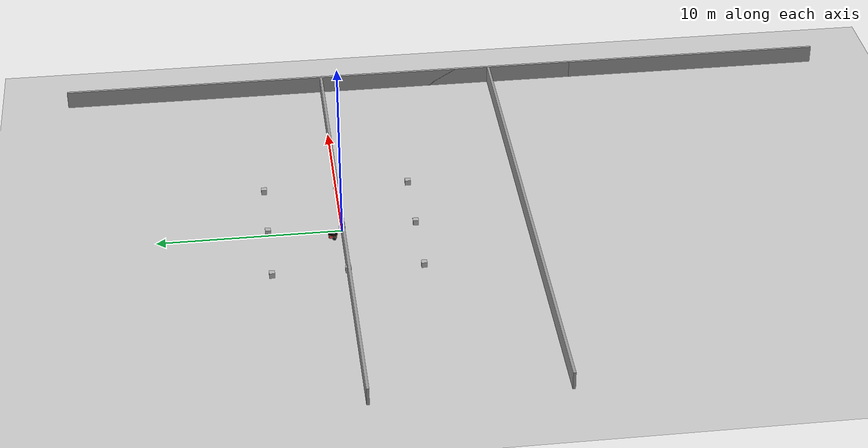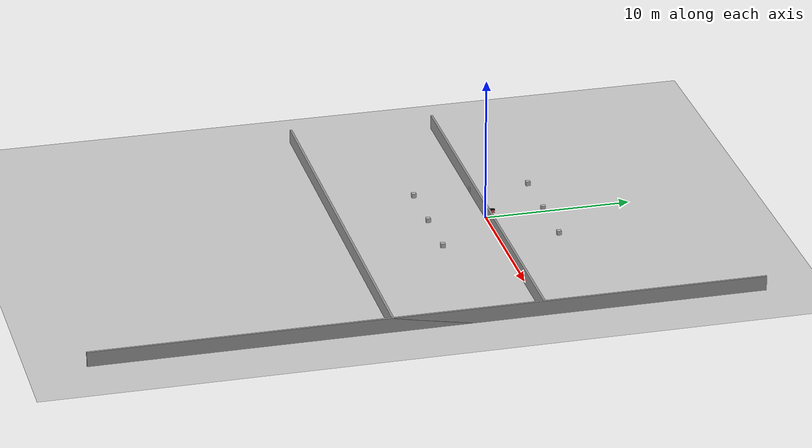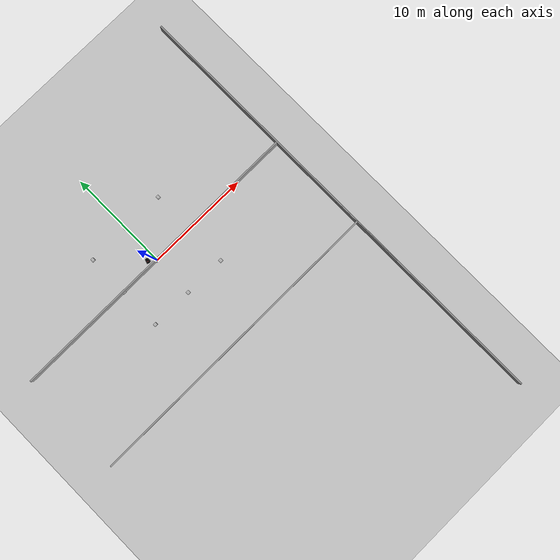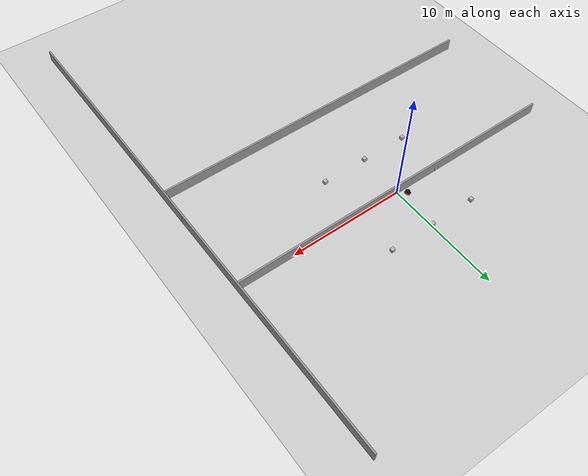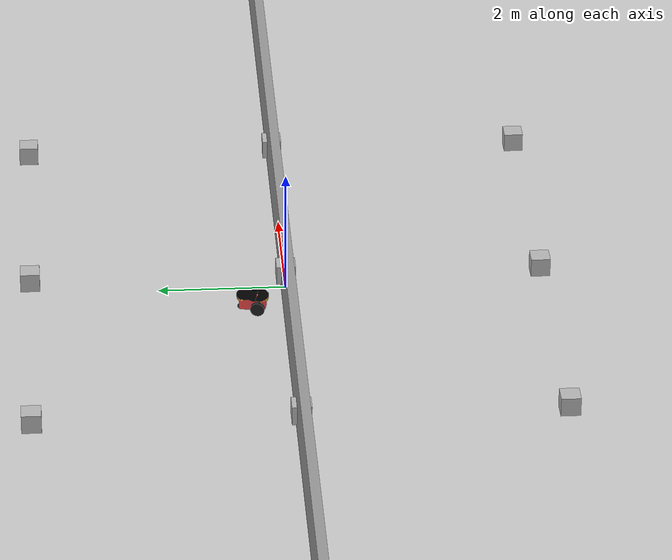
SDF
<?xml version="1.0" ?>
<sdf version="1.6">
<world name="default">
<include>
<uri>model://sun</uri>
</include>
<include>
<uri>model://ground_plane</uri>
</include>

<model name="EmptyRoom">
<include>
<uri>model://empty_room</uri>
</include>
</model>

<model name="DynamicObstacle1">
<pose>-4 4 0.15 0 0 0</pose>
<include>
<uri>model://dynamic_obstacle</uri>
</include>
</model>

<model name="DynamicObstacle2">
<pose>-4 0 0.15 0 0 0</pose>
<include>
<uri>model://dynamic_obstacle</uri>
</include>
</model>

<model name="DynamicObstacle3">
<pose>-4 -4 0.15 0 0 0</pose>
<include>
<uri>model://dynamic_obstacle</uri>
</include>
</model>

<model name="DynamicObstacle4">
<pose>0 4 0.15 0 0 0</pose>
<include>
<uri>model://dynamic_obstacle</uri>
</include>
</model>

<model name="DynamicObstacle5">
<pose>0 0 0.15 0 0 0</pose>
<include>
<uri>model://dynamic_obstacle</uri>
</include>
</model>

<model name="DynamicObstacle6">
<pose>0 -4 0.15 0 0 0</pose>
<include>
<uri>model://dynamic_obstacle</uri>
</include>
</model>

<model name="DynamicObstacle7">
<pose>4 4 0.15 0 0 0</pose>
<include>
<uri>model://dynamic_obstacle</uri>
</include>
</model>

<model name="DynamicObstacle8">
<pose>4 0 0.15 0 0 0</pose>
<include>
<uri>model://dynamic_obstacle</uri>
</include>
</model>

<model name="DynamicObstacle9">
<pose>4 -4 0.15 0 0 0</pose>
<include>
<uri>model://dynamic_obstacle</uri>
</include>
</model>

<include>
<pose>-0.62 0.55 0.0 0.0 0.0 -1.77</pose>
<uri>model://amber</uri>
</include>

</world>
</sdf>

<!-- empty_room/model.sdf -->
<sdf version='1.6'>
  <model name='EmptyRoom'>
    <pose frame=''>0.0 0.0 0.0 0.0 0.0 0.0</pose>
    <link name='Wall_1'>
      <collision name='Wall_1_Collision'>
        <geometry>
          <box>
            <size>30 0.15 1</size>
          </box>
        </geometry>
        <pose frame=''>0 0 0.5 0 -0 0</pose>
      </collision>
      <visual name='Wall_1_Visual'>
        <pose frame=''>0 0 0.5 0 -0 0</pose>
        <geometry>
          <box>
            <size>30 0.15 1</size>
          </box>
        </geometry>
        <material>
          <script>
            <uri>file://media/materials/scripts/gazebo.material</uri>
            <name>Gazebo/Grey</name>
          </script>
          <ambient>1 1 1 1</ambient>
        </material>
        <meta>
          <layer>0</layer>
        </meta>
      </visual>
      <pose frame=''>15 0 0 0 -0 -1.5708</pose>
    </link>
    <link name='Wall_2'>
      <collision name='Wall_2_Collision'>
        <geometry>
          <box>
            <size>30 0.15 1</size>
          </box>
        </geometry>
        <pose frame=''>0 0 0.5 0 -0 0</pose>
      </collision>
      <visual name='Wall_2_Visual'>
        <pose frame=''>0 0 0.5 0 -0 0</pose>
        <geometry>
          <box>
            <size>30 0.15 1</size>
          </box>
        </geometry>
        <material>
          <script>
            <uri>file://media/materials/scripts/gazebo.material</uri>
            <name>Gazebo/Grey</name>
          </script>
          <ambient>1 1 1 1</ambient>
        </material>
        <meta>
          <layer>0</layer>
        </meta>
      </visual>
      <pose frame=''>-0 0 0 0 -0 0</pose>
    </link>
    <link name='Wall_3'>
      <collision name='Wall_3_Collision'>
        <geometry>
          <box>
            <size>30 0.15 1</size>
          </box>
        </geometry>
        <pose frame=''>0 -15 0.5 0 -0 0</pose>
      </collision>
      <visual name='Wall_3_Visual'>
        <pose frame=''>0 -15 0.5 0 -0 0</pose>
        <geometry>
          <box>
            <size>30 0.15 1</size>
          </box>
        </geometry>
        <material>
          <script>
            <uri>file://media/materials/scripts/gazebo.material</uri>
            <name>Gazebo/Grey</name>
          </script>
          <ambient>1 1 1 1</ambient>
        </material>
        <meta>
          <layer>0</layer>
        </meta>
      </visual>
      <pose frame=''>0 -15 0 0 -0 1.5708</pose>
    </link>
    <link name='Wall_4'>
      <collision name='Wall_4_Collision'>
        <geometry>
          <box>
            <size>0 0.15 1</size>
          </box>
        </geometry>
        <pose frame=''>0 15 0.5 0 -0 0</pose>
      </collision>
      <visual name='Wall_4_Visual'>
        <pose frame=''>0 15 0.5 0 -0 0</pose>
        <geometry>
          <box>
            <size>30 0.15 1</size>
          </box>
        </geometry>
        <material>
          <script>
            <uri>file://media/materials/scripts/gazebo.material</uri>
            <name>Gazebo/Grey</name>
          </script>
          <ambient>1 1 1 1</ambient>
        </material>
        <meta>
          <layer>0</layer>
        </meta>
      </visual>
      <pose frame=''>-0 4.925 0 0 -0 3.14159</pose>
    </link>
    <static>1</static>
  </model>
</sdf>

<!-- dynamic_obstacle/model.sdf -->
<sdf version="1.6">
    <model name="DynamicObstacle">
      <pose>0 0 0.15 0 0 0</pose>
      <link name="link">
	<gravity>1</gravity>
        <inertial>
	  <inertia>
	    <ixx>0.17</ixx>
            <ixy>0.00</ixy>
            <ixz>0.00</ixz>
            <iyy>0.17</iyy>
            <iyz>0.00</iyz>
            <izz>0.17</izz>
          </inertia>
          <mass>100</mass>
        </inertial>
        <kinematic>false</kinematic>
        <collision name="collision">
          <max_contacts>0</max_contacts>
          <geometry>
            <box>
              <size>0.3 0.3 0.3</size>
            </box>
          </geometry>
	  <surface>
            <friction>
              <ode>
                <mu>0.0</mu>
                <mu2>0.0</mu2>
              </ode>
            </friction>
            <bounce>
              <restitution_coefficient>0.0</restitution_coefficient>
              <threshold>0.0</threshold>
      	  </bounce>
	  <contact>
            <ode>
              <kp>2000000000</kp>
	      <kd>1</kd>
              <max_vel>2</max_vel>
              <min_depth>0.00</min_depth>
            </ode>
          </contact>
          </surface>
        </collision>
        <visual name="visual">
          <geometry>
            <box>
              <size>0.3 0.3 0.3</size>
            </box>
          </geometry>
        </visual>
      </link>
      <plugin name="random" filename="libRandomVelocityPlugin.so">
        <link>link</link>
        <initial_velocity>0 1 0</initial_velocity>
        <velocity_factor>0.9</velocity_factor>
        <update_period>5</update_period>
        <min_z>-5</min_z>
        <max_z>0</max_z>
      </plugin>
    </model>
</sdf>

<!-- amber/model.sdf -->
<sdf version="1.5">
  <model name="amber">
    <link name="chassis">
      <pose>0 0 0.16 0 0 0</pose>
      <inertial>
        <mass>5.67</mass>
        <inertia>
          <ixx>0.07</ixx>
          <iyy>0.08</iyy>
          <izz>0.10</izz>
          <ixy>0</ixy>
          <ixz>0</ixz>
          <iyz>0</iyz>
        </inertia>
      </inertial>
      <collision name="collision">
        <geometry>
          <box>
            <size>0.445 0.277 0.17</size>
          </box>
        </geometry>
      </collision>
      <collision name="castor_collision">
        <pose>-0.200 0 -0.12 0 0 0</pose>
        <geometry>
          <sphere>
            <radius>0.04</radius>
          </sphere>
        </geometry>
        <surface>
          <friction>
            <ode>
              <mu>0</mu>
              <mu2>0</mu2>
              <slip1>1.0</slip1>
              <slip2>1.0</slip2>
            </ode>
          </friction>
        </surface>
      </collision>
      <visual name="visual">
        <pose>0 0 0.04 0 0 0</pose>
        <geometry>
          <mesh>
            <uri>model://pioneer2dx/meshes/chassis.dae</uri>
          </mesh>
        </geometry>
      </visual>
      <visual name="castor_visual">
        <pose>-0.200 0 -0.12 0 0 0</pose>
        <geometry>
          <sphere>
            <radius>0.04</radius>
          </sphere>
        </geometry>
        <material>
          <script>
            <uri>file://media/materials/scripts/gazebo.material</uri>
            <name>Gazebo/FlatBlack</name>
          </script>
        </material>
      </visual>
    </link>
    <link name="right_wheel">
      <pose>0.1 -.17 0.11 0 1.5707 1.5707</pose>
      <inertial>
        <mass>1.5</mass>
        <inertia>
          <ixx>0.0051</ixx>
          <iyy>0.0051</iyy>
          <izz>0.0090</izz>
          <ixy>0</ixy>
          <ixz>0</ixz>
          <iyz>0</iyz>
        </inertia>
      </inertial>
      <collision name="collision">
        <geometry>
          <cylinder>
            <radius>0.11</radius>
            <length>0.05</length>
          </cylinder>
        </geometry>
        <surface>
          <friction>
            <ode>
              <mu>100000.0</mu>
              <mu2>100000.0</mu2>
              <slip1>0.0</slip1>
              <slip2>0.0</slip2>
            </ode>
          </friction>
        </surface>
      </collision>
      <visual name="visual">
        <geometry>
          <cylinder>
            <radius>0.11</radius>
            <length>0.05</length>
          </cylinder>
        </geometry>
        <material>
          <script>
            <uri>file://media/materials/scripts/gazebo.material</uri>
            <name>Gazebo/FlatBlack</name>
          </script>
        </material>
      </visual>
    </link>
    <link name="left_wheel">
      <pose>0.1 .17 0.11 0 1.5707 1.5707</pose>
      <inertial>
        <mass>1.5</mass>
        <inertia>
          <ixx>0.0051</ixx>
          <iyy>0.0051</iyy>
          <izz>0.0090</izz>
          <ixy>0</ixy>
          <ixz>0</ixz>
          <iyz>0</iyz>
        </inertia>
      </inertial>
      <collision name="collision">
        <geometry>
          <cylinder>
            <radius>0.11</radius>
            <length>0.05</length>
          </cylinder>
        </geometry>
        <surface>
          <friction>
            <ode>
              <mu>100000.0</mu>
              <mu2>100000.0</mu2>
              <slip1>0.0</slip1>
              <slip2>0.0</slip2>
            </ode>
          </friction>
        </surface>
      </collision>
      <visual name="visual">
        <geometry>
          <cylinder>
            <radius>0.11</radius>
            <length>0.05</length>
          </cylinder>
        </geometry>
        <material>
          <script>
            <uri>file://media/materials/scripts/gazebo.material</uri>
            <name>Gazebo/FlatBlack</name>
          </script>
        </material>
      </visual>
    </link>
    <joint type="revolute" name="left_wheel_hinge">
      <pose>0 0 -0.03 0 0 0</pose>
      <child>left_wheel</child>
      <parent>chassis</parent>
      <axis>
        <xyz>0 1 0</xyz>
        <use_parent_model_frame>true</use_parent_model_frame>
      </axis>
    </joint>
    <joint type="revolute" name="right_wheel_hinge">
      <pose>0 0 0.03 0 0 0</pose>
      <child>right_wheel</child>
      <parent>chassis</parent>
      <axis>
        <xyz>0 1 0</xyz>
        <use_parent_model_frame>true</use_parent_model_frame>
      </axis>
    </joint>
    <plugin name="diff_drive" filename="libgazebo_ros_diff_drive.so">
        <ros>
            <namespace>/amber_sim</namespace>
        </ros>

        <left_joint>left_wheel_hinge</left_joint>
        <right_joint>right_wheel_hinge</right_joint>

        <wheel_diameter>0.22</wheel_diameter>

        <publish_odom>true</publish_odom>

        <robot_base_frame>chassis</robot_base_frame>
    </plugin>
  </model>
</sdf>
